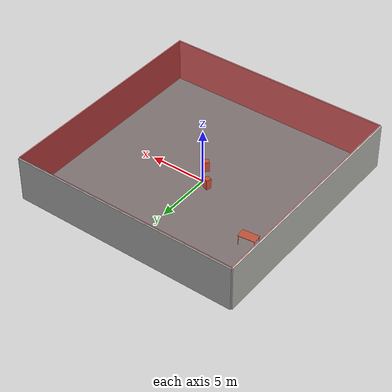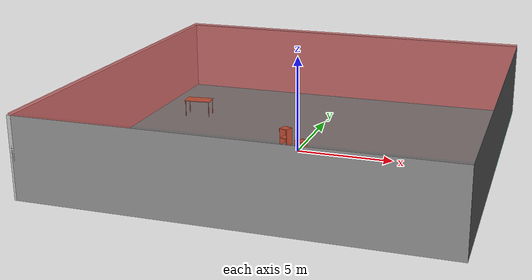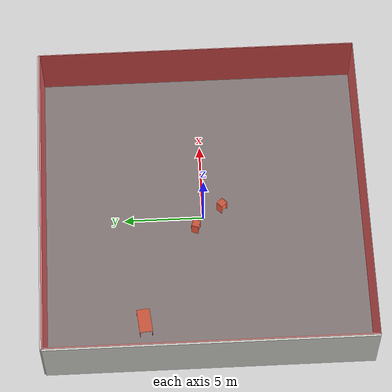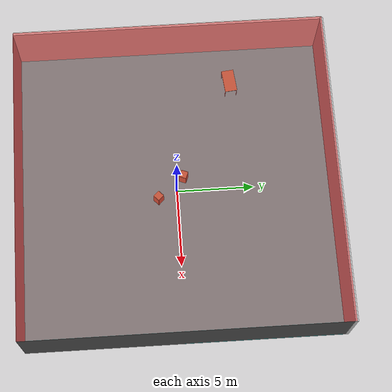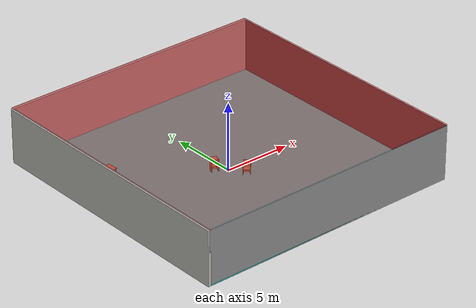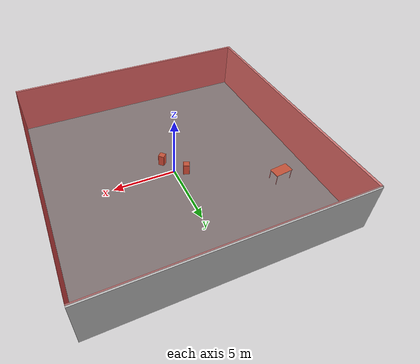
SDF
<sdf version="1.4">
 <world name="default">
  <physics type="ode">
   <max_step_size>0.001</max_step_size>
   <real_time_factor>1</real_time_factor>
   <real_time_update_rate>1000</real_time_update_rate>
   <gravity>0 0 -9.8</gravity>
  </physics>
  <scene><ambient>0.4 0.4 0.4 1</ambient><background>0.7 0.7 0.7 1</background><shadows>1</shadows></scene>
  <model name="Surrounding">
   <static>1</static>
   <link name="Ceiling">
    <collision name="Ceiling_Collision"><geometry><box><size>20 20 0.1</size></box></geometry></collision>
    <visual name="Ceiling_Visual">
     <geometry><box><size>20 20 0.1</size></box></geometry>
     <material>
      <script><uri>file://media/materials/scripts/gazebo.material</uri><name>Gazebo/RedTransparent</name></script>
     </material>
    </visual>
    <pose>0 0 4.05 0 0 0</pose>
   </link>
   <link name="Wall_South">
    <collision name="Wall_South_Collision">
     <geometry><box><size>20 0 4</size></box></geometry>
     <pose>0 0 2 0 -0 0</pose>
    </collision>
    <visual name="Wall_South_Visual">
     <pose>0 0 2 0 -0 0</pose>
     <geometry><box><size>20 0 4</size></box></geometry>
     <material>
      <script><uri>file://media/materials/scripts/gazebo.material</uri><name>Gazebo/Grey</name></script>
     </material>
    </visual>
    <velocity_decay><linear>0</linear><angular>0</angular></velocity_decay>
    <pose>0 -10 0 0 -0 0</pose>
   </link>
   <link name="Wall_East">
    <collision name="Wall_21_Collision">
     <geometry><box><size>20 0 4</size></box></geometry>
     <pose>0 0 2 0 -0 0</pose>
    </collision>
    <visual name="Wall_21_Visual">
     <pose>0 0 2 0 -0 0</pose>
     <geometry><box><size>20 0 4</size></box></geometry>
     <material>
      <script><uri>file://media/materials/scripts/gazebo.material</uri><name>Gazebo/DarkGrey</name></script>
     </material>
    </visual>
    <velocity_decay><linear>0</linear><angular>0</angular></velocity_decay>
    <pose>10 0 0 0 -0 1.5708</pose>
   </link>
   <link name="Wall_North">
    <collision name="Wall_22_Collision">
     <geometry><box><size>20 0.2 4</size></box></geometry>
     <pose>0 0 2 0 -0 0</pose>
    </collision>
    <visual name="Wall_22_Visual">
     <pose>0 0 2 0 -0 0</pose>
     <geometry><box><size>20 0.2 4</size></box></geometry>
     <material>
      <script><uri>file://media/materials/scripts/gazebo.material</uri><name>Gazebo/CloudySky</name></script>
     </material>
    </visual>
    <velocity_decay><linear>0</linear><angular>0</angular></velocity_decay>
    <pose>0 10 0 0 -0 0</pose>
   </link>
   <link name="Wall_West">
    <collision name="Wall_23_Collision">
     <geometry><box><size>20 0.2 4</size></box></geometry>
     <pose>0 0 2 0 -0 0</pose>
    </collision>
    <visual name="Wall_23_Visual">
     <pose>0 0 2 0 -0 0</pose>
     <geometry><box><size>20 0.2 4</size></box></geometry>
     <material>
      <script><uri>file://media/materials/scripts/gazebo.material</uri><name>Gazebo/CeilingTiled</name></script>
     </material>
    </visual>
    <velocity_decay><linear>0</linear><angular>0</angular></velocity_decay>
    <pose>-10 0 0 0 0 -1.5708</pose>
   </link>
   <link name="Ground_link">
    <collision name="collision">
     <pose>0 0 .05 0 -0 0</pose>
     <geometry><box><size>20 20 0.1</size></box></geometry>
    </collision>
    <visual name="visual">
     <pose>0 0 .05 0 -0 0</pose>
     <geometry><box><size>20 20 0.1</size></box></geometry>
     <material>
      <script>
       <uri>file://media/materials/scripts/gazebo.material</uri>
       <name>Gazebo/TurquoiseGlowOutline</name>
      </script>
     </material>
    </visual>
   </link>
   <static>1</static>
  </model>
  <spherical_coordinates>
   <surface_model>EARTH_WGS84</surface_model>
   <latitude_deg>0</latitude_deg>
   <longitude_deg>0</longitude_deg>
   <elevation>0</elevation>
   <heading_deg>0</heading_deg>
  </spherical_coordinates>
  <light name="lightball_0" type="diffuse">
   <diffuse>0.8 0.8 0.8 1</diffuse>
   <specular>0.2 0.2 0.2 1</specular>
   <attenuation>
    <range>100</range>
    <constant>0.7</constant>
    <linear>0.01</linear>
    <quadratic>0.001</quadratic>
   </attenuation>
   <direction>-0.5 0.1 -0.9</direction>
   <pose>9.79857948682 5.63782922858 2.53634308297 0 0 0</pose>
  </light>
  <light name="lightball_1" type="diffuse">
   <diffuse>0.8 0.8 0.8 1</diffuse>
   <specular>0.2 0.2 0.2 1</specular>
   <attenuation>
    <range>100</range>
    <constant>0.7</constant>
    <linear>0.01</linear>
    <quadratic>0.001</quadratic>
   </attenuation>
   <direction>-0.5 0.1 -0.9</direction>
   <pose>0.944812918652 -7.9418796708 3.27030003002 0 0 0</pose>
  </light>
  <light name="lightball_2" type="diffuse">
   <diffuse>0.8 0.8 0.8 1</diffuse>
   <specular>0.2 0.2 0.2 1</specular>
   <attenuation>
    <range>100</range>
    <constant>0.7</constant>
    <linear>0.01</linear>
    <quadratic>0.001</quadratic>
   </attenuation>
   <direction>-0.5 0.1 -0.9</direction>
   <pose>0.96450691345 7.98901410236 2.6810332331 0 0 0</pose>
  </light>
  <include><uri>model://table</uri><pose>-7.21924339932 3.92809125636 0 0 0 0.106952466913</pose></include>
  <include><uri>model://cabinet</uri><pose>-0.805979766508 0.480931337682 0 0 0 1.20060280955</pose></include>
  <include><uri>model://cabinet</uri><pose>0.551062756224 -1.20787085194 0 0 0 0.774131379914</pose></include>
 </world>
</sdf>

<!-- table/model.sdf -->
<sdf version="1.5">
  <model name="table">
    <static>true</static>
    <link name="link">
      <collision name="surface">
        <pose>0 0 1.0 0 0 0</pose>
        <geometry>
          <box>
            <size>1.5 0.8 0.03</size>
          </box>
        </geometry>
        <surface>
          <friction>
            <ode>
              <mu>0.6</mu>
              <mu2>0.6</mu2>
            </ode>
          </friction>
        </surface>
      </collision>
      <visual name="visual1">
        <pose>0 0 1.0 0 0 0</pose>
        <geometry>
          <box>
            <size>1.5 0.8 0.03</size>
          </box>
        </geometry>
        <material>
          <script>
            <uri>model://media/materials/scripts/gazebo.material</uri>
            <name>Gazebo/Wood</name>
          </script>
        </material>
      </visual>
      <collision name="front_left_leg">
        <pose>0.68 0.38 0.5 0 0 0</pose>
        <geometry>
          <cylinder>
            <radius>0.02</radius>
            <length>1.0</length>
          </cylinder>
        </geometry>
      </collision>
      <visual name="front_left_leg">
        <pose>0.68 0.38 0.5 0 0 0</pose>
        <geometry>
          <cylinder>
            <radius>0.02</radius>
            <length>1.0</length>
          </cylinder>
        </geometry>
        <material>
          <script>
            <uri>model://media/materials/scripts/gazebo.material</uri>
            <name>Gazebo/Grey</name>
          </script>
        </material>
      </visual>
      <collision name="front_right_leg">
        <pose>0.68 -0.38 0.5 0 0 0</pose>
        <geometry>
          <cylinder>
            <radius>0.02</radius>
            <length>1.0</length>
          </cylinder>
        </geometry>
      </collision>
      <visual name="front_right_leg">
        <pose>0.68 -0.38 0.5 0 0 0</pose>
        <geometry>
          <cylinder>
            <radius>0.02</radius>
            <length>1.0</length>
          </cylinder>
        </geometry>
        <material>
          <script>
            <uri>model://media/materials/scripts/gazebo.material</uri>
            <name>Gazebo/Grey</name>
          </script>
        </material>
      </visual>
      <collision name="back_right_leg">
        <pose>-0.68 -0.38 0.5 0 0 0</pose>
        <geometry>
          <cylinder>
            <radius>0.02</radius>
            <length>1.0</length>
          </cylinder>
        </geometry>
      </collision>
      <visual name="back_right_leg">
        <pose>-0.68 -0.38 0.5 0 0 0</pose>
        <geometry>
          <cylinder>
            <radius>0.02</radius>
            <length>1.0</length>
          </cylinder>
        </geometry>
        <material>
          <script>
            <uri>model://media/materials/scripts/gazebo.material</uri>
            <name>Gazebo/Grey</name>
          </script>
        </material>
      </visual>
      <collision name="back_left_leg">
        <pose>-0.68 0.38 0.5 0 0 0</pose>
        <geometry>
          <cylinder>
            <radius>0.02</radius>
            <length>1.0</length>
          </cylinder>
        </geometry>
      </collision>
      <visual name="back_left_leg">
        <pose>-0.68 0.38 0.5 0 0 0</pose>
        <geometry>
          <cylinder>
            <radius>0.02</radius>
            <length>1.0</length>
          </cylinder>
        </geometry>
        <material>
          <script>
            <uri>model://media/materials/scripts/gazebo.material</uri>
            <name>Gazebo/Grey</name>
          </script>
        </material>
      </visual>
    </link>
  </model>
</sdf>

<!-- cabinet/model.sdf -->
<sdf version="1.5">
  <model name="cabinet">
    <static>true</static>
    <link name="cabinet_bottom_plate">
      <inertial>
        <pose>0 0 -1 0 0 0</pose>
        <inertia>
          <ixx>2.050000</ixx>
          <ixy>0</ixy>
          <ixz>0</ixz>
          <iyy>2.050000</iyy>
          <iyz>0</iyz>
          <izz>2.050000</izz>
        </inertia>
        <mass>25.000000</mass>
      </inertial>
      <collision name="cabinet_bottom_plate_geom">
        <pose>0 0 0.010000 0 0 0</pose>
        <geometry>
          <box>
            <size>0.450000 0.450000 0.020000</size>
          </box>
        </geometry>
      </collision>
      <visual name="cabinet_bottom_plate_geom_visual">
        <pose>0 0 0.010000 0 0 0</pose>
        <geometry>
          <box>
            <size>0.450000 0.450000 0.020000</size>
          </box>
        </geometry>
        <material>
          <script>
            <uri>model://media/materials/scripts/gazebo.material</uri>
            <name>Gazebo/Wood</name>
          </script>
        </material>
      </visual>
      <collision name="cabinet_bottom_plate_geom_cabinet_back_plate">
        <pose>0.235000 0 0.510000 0 0 0</pose>
        <geometry>
          <box>
            <size>0.020000 0.450000 1.020000</size>
          </box>
        </geometry>
      </collision>
      <visual name="cabinet_bottom_plate_geom_cabinet_back_plate_visual">
        <pose>0.235000 0 0.510000 0 0 0</pose>
        <geometry>
          <box>
            <size>0.020000 0.450000 1.020000</size>
          </box>
        </geometry>
        <material>
          <script>
            <uri>model://media/materials/scripts/gazebo.material</uri>
            <name>Gazebo/Wood</name>
          </script>
        </material>
      </visual>
      <collision name="cabinet_bottom_plate_geom_cabinet_left_plate">
        <pose>0 0.235000 0.510000 0 0 0</pose>
        <geometry>
          <box>
            <size>0.450000 0.020000 1.020000</size>
          </box>
        </geometry>
      </collision>
      <visual name="cabinet_bottom_plate_geom_cabinet_left_plate_visual">
        <pose>0 0.235000 0.510000 0 0 0</pose>
        <geometry>
          <box>
            <size>0.450000 0.020000 1.020000</size>
          </box>
        </geometry>
        <material>
          <script>
            <uri>model://media/materials/scripts/gazebo.material</uri>
            <name>Gazebo/Wood</name>
          </script>
        </material>
      </visual>
      <collision name="cabinet_bottom_plate_geom_cabinet_middle_plate">
        <pose>0 0 0.510000 0 0 0</pose>
        <geometry>
          <box>
            <size>0.450000 0.450000 0.020000</size>
          </box>
        </geometry>
      </collision>
      <visual name="cabinet_bottom_plate_geom_cabinet_middle_plate_visual">
        <pose>0 0 0.510000 0 0 0</pose>
        <geometry>
          <box>
            <size>0.450000 0.450000 0.020000</size>
          </box>
        </geometry>
        <material>
          <script>
            <uri>model://media/materials/scripts/gazebo.material</uri>
            <name>Gazebo/Wood</name>
          </script>
        </material>
      </visual>
      <collision name="cabinet_bottom_plate_geom_cabinet_right_plate">
        <pose>0 -0.235000 0.510000 0 0 0</pose>
        <geometry>
          <box>
            <size>0.450000 0.020000 1.020000</size>
          </box>
        </geometry>
      </collision>
      <visual name="cabinet_bottom_plate_geom_cabinet_right_plate_visual">
        <pose>0 -0.235000 0.510000 0 0 0</pose>
        <geometry>
          <box>
            <size>0.450000 0.020000 1.020000</size>
          </box>
        </geometry>
        <material>
          <script>
            <uri>model://media/materials/scripts/gazebo.material</uri>
            <name>Gazebo/Wood</name>
          </script>
        </material>
      </visual>
      <collision name="cabinet_bottom_plate_geom_cabinet_top_plate">
        <pose>0 0 1.010000 0 0 0</pose>
        <geometry>
          <box>
            <size>0.450000 0.450000 0.020000</size>
          </box>
        </geometry>
      </collision>
      <visual name="cabinet_bottom_plate_geom_cabinet_top_plate_visual">
        <pose>0 0 1.010000 0 0 0</pose>
        <geometry>
          <box>
            <size>0.450000 0.450000 0.020000</size>
          </box>
        </geometry>
        <material>
          <script>
            <uri>model://media/materials/scripts/gazebo.material</uri>
            <name>Gazebo/Wood</name>
          </script>
        </material>
      </visual>
    </link>
  </model>
</sdf>
